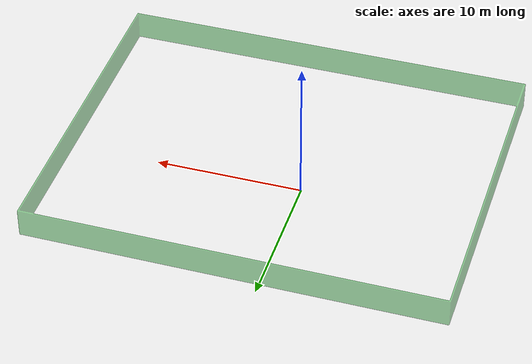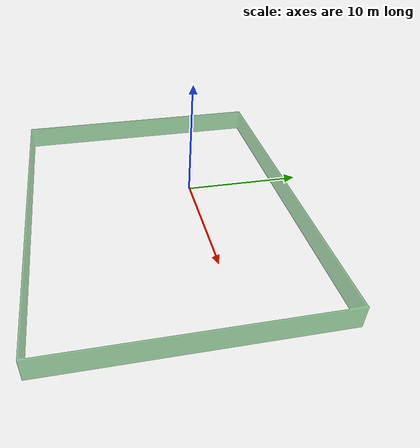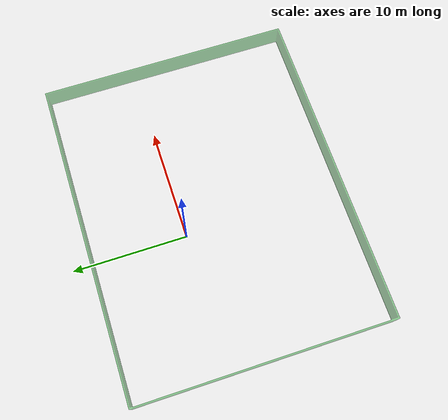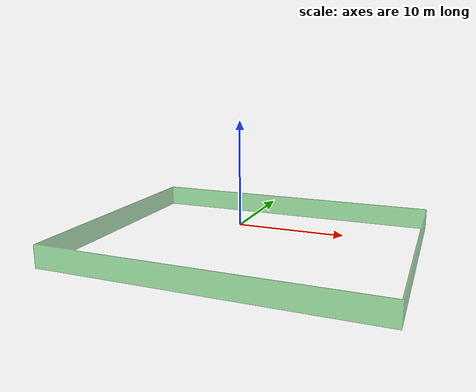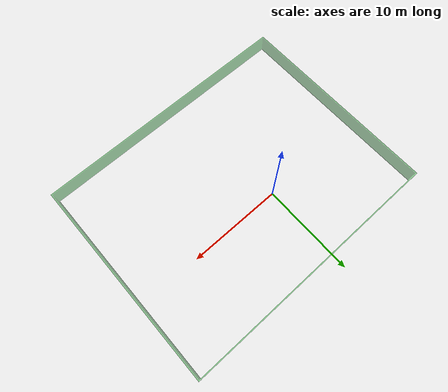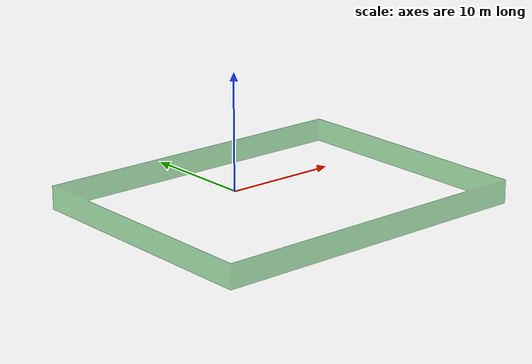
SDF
<?xml version="1.0" ?>
<sdf version="1.5">
  <model name="wall_vineyard">

    <pose>0 0 0  0 0 0</pose>

    <static>true</static>
    <link name="link">
      <inertial>
        <mass>50</mass>
        <inertia>
          <ixx>1</ixx>
          <ixy>0</ixy>
          <ixz>0</ixz>
          <iyy>1</iyy>
          <iyz>0</iyz>
          <izz>1</izz>
        </inertia>
      </inertial>

      <collision name="collision">
	    <pose>0 0 0  0 0 0</pose>
        <geometry>
          <mesh>
            <uri>model://wall_vineyard/meshes/wall_vineyard.stl</uri>
          </mesh>
        </geometry>
      </collision>

      <visual name="visual">
        <geometry>
          <mesh>
            <uri>model://wall_vineyard/meshes/wall_vineyard.stl</uri>
          </mesh>
        </geometry>
        <material>
           <script>
  <name>Gazebo/GreenTransparent</name>
  </script>
        </material>
      </visual>
    </link>
  </model>
</sdf>
